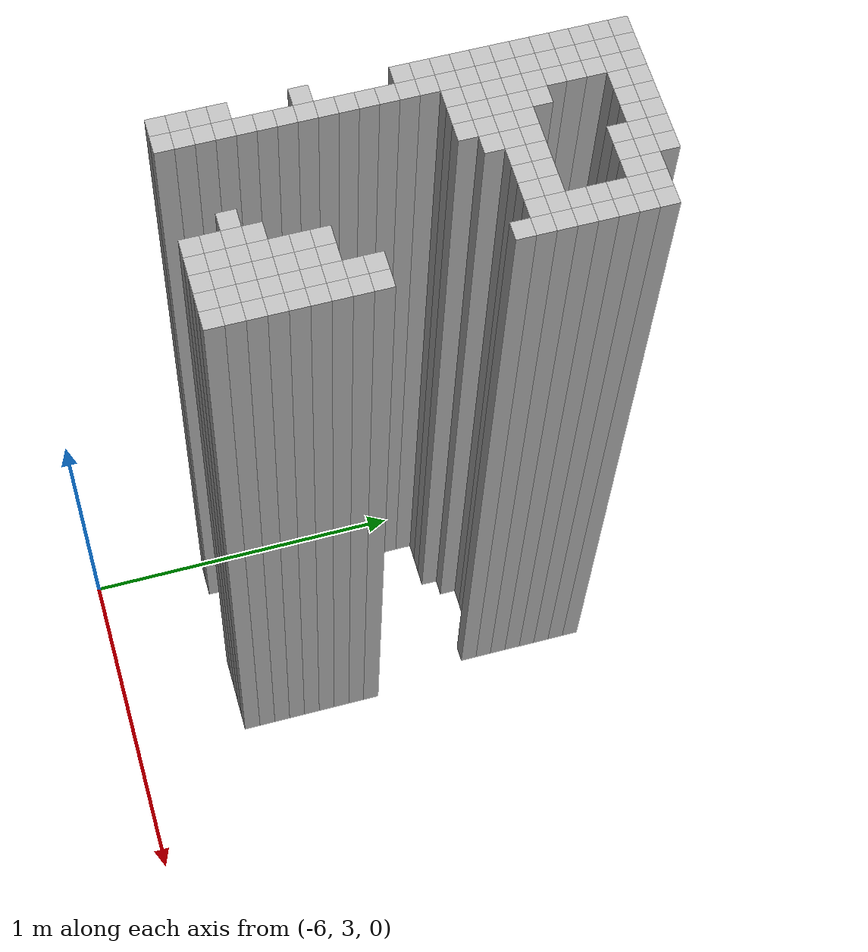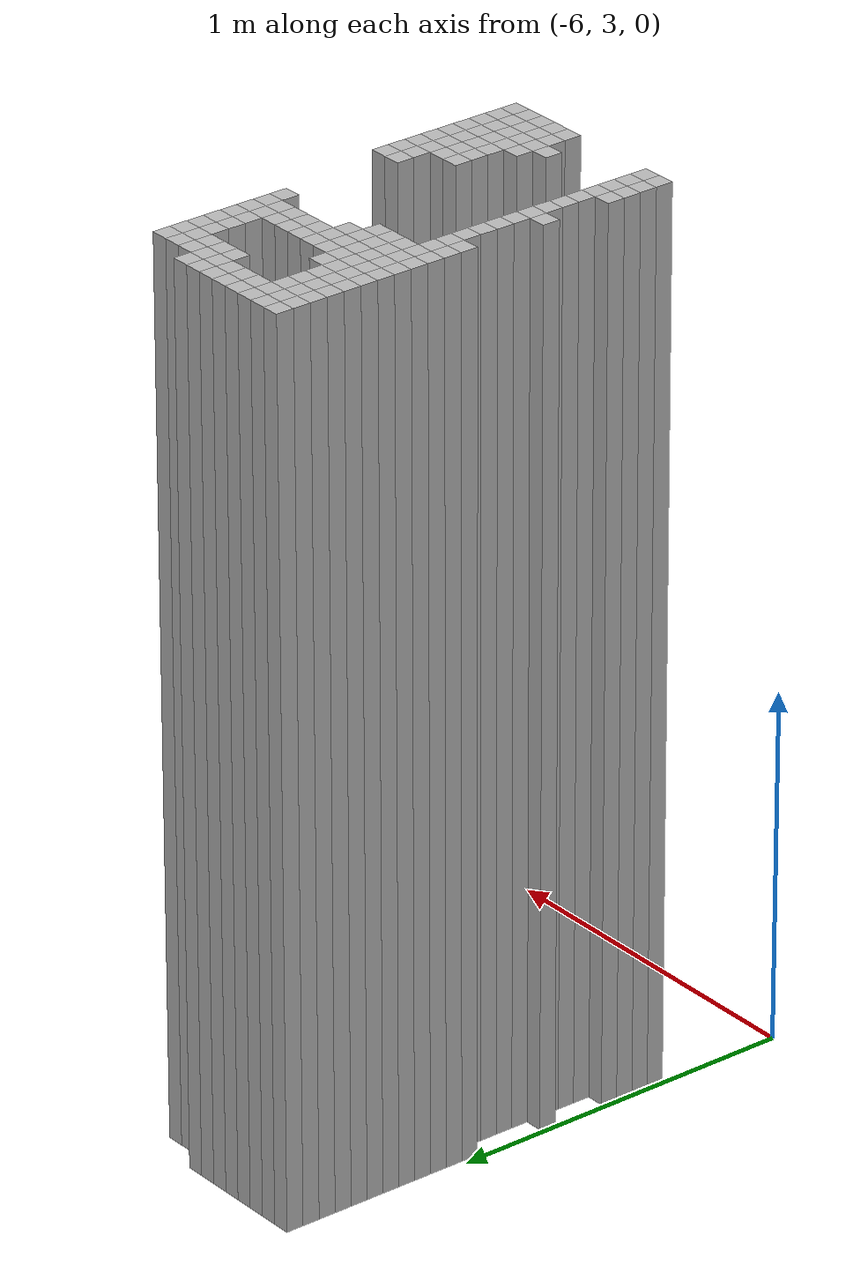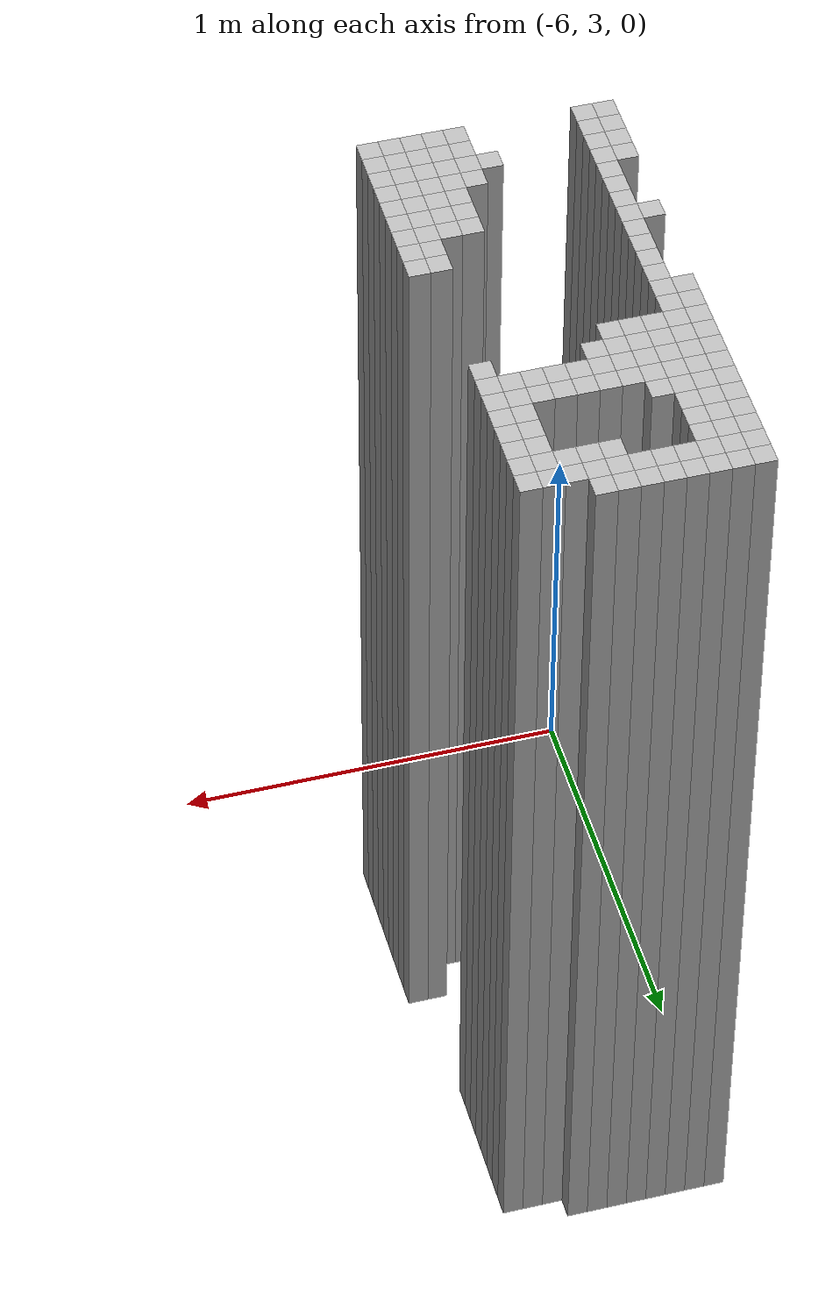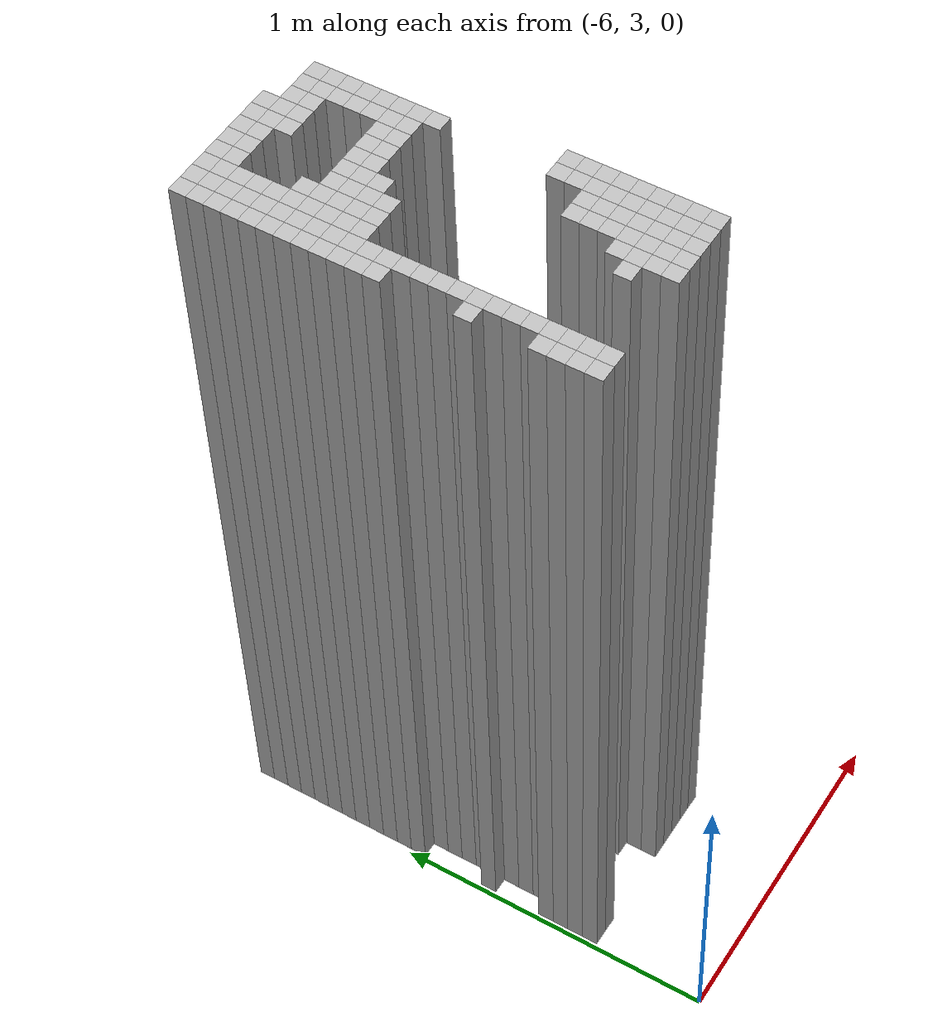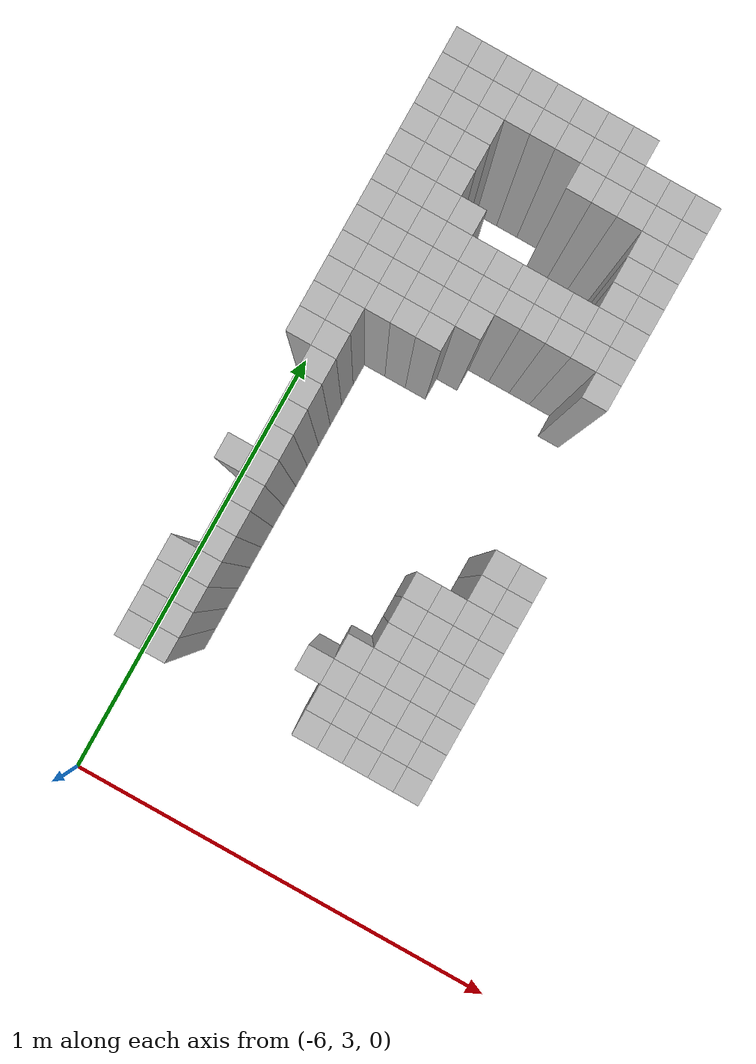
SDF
<sdf version="1.9">
 <world name="map_world">
  <model name="wall_104_63">
   <static>true</static>
   <pose>-5.961 4.530 1.250 0 0 0</pose>
   <link name="link">
    <collision name="collision"><geometry><box><size>0.050 0.050 2.500</size></box></geometry></collision>
    <visual name="visual"><geometry><box><size>0.050 0.050 2.500</size></box></geometry></visual>
   </link>
  </model>
  <model name="wall_105_63">
   <static>true</static>
   <pose>-5.911 4.530 1.250 0 0 0</pose>
   <link name="link">
    <collision name="collision"><geometry><box><size>0.050 0.050 2.500</size></box></geometry></collision>
    <visual name="visual"><geometry><box><size>0.050 0.050 2.500</size></box></geometry></visual>
   </link>
  </model>
  <model name="wall_106_63">
   <static>true</static>
   <pose>-5.861 4.530 1.250 0 0 0</pose>
   <link name="link">
    <collision name="collision"><geometry><box><size>0.050 0.050 2.500</size></box></geometry></collision>
    <visual name="visual"><geometry><box><size>0.050 0.050 2.500</size></box></geometry></visual>
   </link>
  </model>
  <model name="wall_107_63">
   <static>true</static>
   <pose>-5.811 4.530 1.250 0 0 0</pose>
   <link name="link">
    <collision name="collision"><geometry><box><size>0.050 0.050 2.500</size></box></geometry></collision>
    <visual name="visual"><geometry><box><size>0.050 0.050 2.500</size></box></geometry></visual>
   </link>
  </model>
  <model name="wall_108_63">
   <static>true</static>
   <pose>-5.761 4.530 1.250 0 0 0</pose>
   <link name="link">
    <collision name="collision"><geometry><box><size>0.050 0.050 2.500</size></box></geometry></collision>
    <visual name="visual"><geometry><box><size>0.050 0.050 2.500</size></box></geometry></visual>
   </link>
  </model>
  <model name="wall_109_63">
   <static>true</static>
   <pose>-5.711 4.530 1.250 0 0 0</pose>
   <link name="link">
    <collision name="collision"><geometry><box><size>0.050 0.050 2.500</size></box></geometry></collision>
    <visual name="visual"><geometry><box><size>0.050 0.050 2.500</size></box></geometry></visual>
   </link>
  </model>
  <model name="wall_110_63">
   <static>true</static>
   <pose>-5.661 4.530 1.250 0 0 0</pose>
   <link name="link">
    <collision name="collision"><geometry><box><size>0.050 0.050 2.500</size></box></geometry></collision>
    <visual name="visual"><geometry><box><size>0.050 0.050 2.500</size></box></geometry></visual>
   </link>
  </model>
  <model name="wall_111_63">
   <static>true</static>
   <pose>-5.611 4.530 1.250 0 0 0</pose>
   <link name="link">
    <collision name="collision"><geometry><box><size>0.050 0.050 2.500</size></box></geometry></collision>
    <visual name="visual"><geometry><box><size>0.050 0.050 2.500</size></box></geometry></visual>
   </link>
  </model>
  <model name="wall_104_64">
   <static>true</static>
   <pose>-5.961 4.480 1.250 0 0 0</pose>
   <link name="link">
    <collision name="collision"><geometry><box><size>0.050 0.050 2.500</size></box></geometry></collision>
    <visual name="visual"><geometry><box><size>0.050 0.050 2.500</size></box></geometry></visual>
   </link>
  </model>
  <model name="wall_105_64">
   <static>true</static>
   <pose>-5.911 4.480 1.250 0 0 0</pose>
   <link name="link">
    <collision name="collision"><geometry><box><size>0.050 0.050 2.500</size></box></geometry></collision>
    <visual name="visual"><geometry><box><size>0.050 0.050 2.500</size></box></geometry></visual>
   </link>
  </model>
  <model name="wall_106_64">
   <static>true</static>
   <pose>-5.861 4.480 1.250 0 0 0</pose>
   <link name="link">
    <collision name="collision"><geometry><box><size>0.050 0.050 2.500</size></box></geometry></collision>
    <visual name="visual"><geometry><box><size>0.050 0.050 2.500</size></box></geometry></visual>
   </link>
  </model>
  <model name="wall_107_64">
   <static>true</static>
   <pose>-5.811 4.480 1.250 0 0 0</pose>
   <link name="link">
    <collision name="collision"><geometry><box><size>0.050 0.050 2.500</size></box></geometry></collision>
    <visual name="visual"><geometry><box><size>0.050 0.050 2.500</size></box></geometry></visual>
   </link>
  </model>
  <model name="wall_108_64">
   <static>true</static>
   <pose>-5.761 4.480 1.250 0 0 0</pose>
   <link name="link">
    <collision name="collision"><geometry><box><size>0.050 0.050 2.500</size></box></geometry></collision>
    <visual name="visual"><geometry><box><size>0.050 0.050 2.500</size></box></geometry></visual>
   </link>
  </model>
  <model name="wall_109_64">
   <static>true</static>
   <pose>-5.711 4.480 1.250 0 0 0</pose>
   <link name="link">
    <collision name="collision"><geometry><box><size>0.050 0.050 2.500</size></box></geometry></collision>
    <visual name="visual"><geometry><box><size>0.050 0.050 2.500</size></box></geometry></visual>
   </link>
  </model>
  <model name="wall_110_64">
   <static>true</static>
   <pose>-5.661 4.480 1.250 0 0 0</pose>
   <link name="link">
    <collision name="collision"><geometry><box><size>0.050 0.050 2.500</size></box></geometry></collision>
    <visual name="visual"><geometry><box><size>0.050 0.050 2.500</size></box></geometry></visual>
   </link>
  </model>
  <model name="wall_111_64">
   <static>true</static>
   <pose>-5.611 4.480 1.250 0 0 0</pose>
   <link name="link">
    <collision name="collision"><geometry><box><size>0.050 0.050 2.500</size></box></geometry></collision>
    <visual name="visual"><geometry><box><size>0.050 0.050 2.500</size></box></geometry></visual>
   </link>
  </model>
  <model name="wall_112_64">
   <static>true</static>
   <pose>-5.561 4.480 1.250 0 0 0</pose>
   <link name="link">
    <collision name="collision"><geometry><box><size>0.050 0.050 2.500</size></box></geometry></collision>
    <visual name="visual"><geometry><box><size>0.050 0.050 2.500</size></box></geometry></visual>
   </link>
  </model>
  <model name="wall_113_64">
   <static>true</static>
   <pose>-5.511 4.480 1.250 0 0 0</pose>
   <link name="link">
    <collision name="collision"><geometry><box><size>0.050 0.050 2.500</size></box></geometry></collision>
    <visual name="visual"><geometry><box><size>0.050 0.050 2.500</size></box></geometry></visual>
   </link>
  </model>
  <model name="wall_114_64">
   <static>true</static>
   <pose>-5.461 4.480 1.250 0 0 0</pose>
   <link name="link">
    <collision name="collision"><geometry><box><size>0.050 0.050 2.500</size></box></geometry></collision>
    <visual name="visual"><geometry><box><size>0.050 0.050 2.500</size></box></geometry></visual>
   </link>
  </model>
  <model name="wall_104_65">
   <static>true</static>
   <pose>-5.961 4.430 1.250 0 0 0</pose>
   <link name="link">
    <collision name="collision"><geometry><box><size>0.050 0.050 2.500</size></box></geometry></collision>
    <visual name="visual"><geometry><box><size>0.050 0.050 2.500</size></box></geometry></visual>
   </link>
  </model>
  <model name="wall_105_65">
   <static>true</static>
   <pose>-5.911 4.430 1.250 0 0 0</pose>
   <link name="link">
    <collision name="collision"><geometry><box><size>0.050 0.050 2.500</size></box></geometry></collision>
    <visual name="visual"><geometry><box><size>0.050 0.050 2.500</size></box></geometry></visual>
   </link>
  </model>
  <model name="wall_106_65">
   <static>true</static>
   <pose>-5.861 4.430 1.250 0 0 0</pose>
   <link name="link">
    <collision name="collision"><geometry><box><size>0.050 0.050 2.500</size></box></geometry></collision>
    <visual name="visual"><geometry><box><size>0.050 0.050 2.500</size></box></geometry></visual>
   </link>
  </model>
  <model name="wall_110_65">
   <static>true</static>
   <pose>-5.661 4.430 1.250 0 0 0</pose>
   <link name="link">
    <collision name="collision"><geometry><box><size>0.050 0.050 2.500</size></box></geometry></collision>
    <visual name="visual"><geometry><box><size>0.050 0.050 2.500</size></box></geometry></visual>
   </link>
  </model>
  <model name="wall_111_65">
   <static>true</static>
   <pose>-5.611 4.430 1.250 0 0 0</pose>
   <link name="link">
    <collision name="collision"><geometry><box><size>0.050 0.050 2.500</size></box></geometry></collision>
    <visual name="visual"><geometry><box><size>0.050 0.050 2.500</size></box></geometry></visual>
   </link>
  </model>
  <model name="wall_112_65">
   <static>true</static>
   <pose>-5.561 4.430 1.250 0 0 0</pose>
   <link name="link">
    <collision name="collision"><geometry><box><size>0.050 0.050 2.500</size></box></geometry></collision>
    <visual name="visual"><geometry><box><size>0.050 0.050 2.500</size></box></geometry></visual>
   </link>
  </model>
  <model name="wall_113_65">
   <static>true</static>
   <pose>-5.511 4.430 1.250 0 0 0</pose>
   <link name="link">
    <collision name="collision"><geometry><box><size>0.050 0.050 2.500</size></box></geometry></collision>
    <visual name="visual"><geometry><box><size>0.050 0.050 2.500</size></box></geometry></visual>
   </link>
  </model>
  <model name="wall_114_65">
   <static>true</static>
   <pose>-5.461 4.430 1.250 0 0 0</pose>
   <link name="link">
    <collision name="collision"><geometry><box><size>0.050 0.050 2.500</size></box></geometry></collision>
    <visual name="visual"><geometry><box><size>0.050 0.050 2.500</size></box></geometry></visual>
   </link>
  </model>
  <model name="wall_104_66">
   <static>true</static>
   <pose>-5.961 4.380 1.250 0 0 0</pose>
   <link name="link">
    <collision name="collision"><geometry><box><size>0.050 0.050 2.500</size></box></geometry></collision>
    <visual name="visual"><geometry><box><size>0.050 0.050 2.500</size></box></geometry></visual>
   </link>
  </model>
  <model name="wall_105_66">
   <static>true</static>
   <pose>-5.911 4.380 1.250 0 0 0</pose>
   <link name="link">
    <collision name="collision"><geometry><box><size>0.050 0.050 2.500</size></box></geometry></collision>
    <visual name="visual"><geometry><box><size>0.050 0.050 2.500</size></box></geometry></visual>
   </link>
  </model>
  <model name="wall_106_66">
   <static>true</static>
   <pose>-5.861 4.380 1.250 0 0 0</pose>
   <link name="link">
    <collision name="collision"><geometry><box><size>0.050 0.050 2.500</size></box></geometry></collision>
    <visual name="visual"><geometry><box><size>0.050 0.050 2.500</size></box></geometry></visual>
   </link>
  </model>
  <model name="wall_113_66">
   <static>true</static>
   <pose>-5.511 4.380 1.250 0 0 0</pose>
   <link name="link">
    <collision name="collision"><geometry><box><size>0.050 0.050 2.500</size></box></geometry></collision>
    <visual name="visual"><geometry><box><size>0.050 0.050 2.500</size></box></geometry></visual>
   </link>
  </model>
  <model name="wall_114_66">
   <static>true</static>
   <pose>-5.461 4.380 1.250 0 0 0</pose>
   <link name="link">
    <collision name="collision"><geometry><box><size>0.050 0.050 2.500</size></box></geometry></collision>
    <visual name="visual"><geometry><box><size>0.050 0.050 2.500</size></box></geometry></visual>
   </link>
  </model>
  <model name="wall_104_67">
   <static>true</static>
   <pose>-5.961 4.330 1.250 0 0 0</pose>
   <link name="link">
    <collision name="collision"><geometry><box><size>0.050 0.050 2.500</size></box></geometry></collision>
    <visual name="visual"><geometry><box><size>0.050 0.050 2.500</size></box></geometry></visual>
   </link>
  </model>
  <model name="wall_105_67">
   <static>true</static>
   <pose>-5.911 4.330 1.250 0 0 0</pose>
   <link name="link">
    <collision name="collision"><geometry><box><size>0.050 0.050 2.500</size></box></geometry></collision>
    <visual name="visual"><geometry><box><size>0.050 0.050 2.500</size></box></geometry></visual>
   </link>
  </model>
  <model name="wall_106_67">
   <static>true</static>
   <pose>-5.861 4.330 1.250 0 0 0</pose>
   <link name="link">
    <collision name="collision"><geometry><box><size>0.050 0.050 2.500</size></box></geometry></collision>
    <visual name="visual"><geometry><box><size>0.050 0.050 2.500</size></box></geometry></visual>
   </link>
  </model>
  <model name="wall_113_67">
   <static>true</static>
   <pose>-5.511 4.330 1.250 0 0 0</pose>
   <link name="link">
    <collision name="collision"><geometry><box><size>0.050 0.050 2.500</size></box></geometry></collision>
    <visual name="visual"><geometry><box><size>0.050 0.050 2.500</size></box></geometry></visual>
   </link>
  </model>
  <model name="wall_114_67">
   <static>true</static>
   <pose>-5.461 4.330 1.250 0 0 0</pose>
   <link name="link">
    <collision name="collision"><geometry><box><size>0.050 0.050 2.500</size></box></geometry></collision>
    <visual name="visual"><geometry><box><size>0.050 0.050 2.500</size></box></geometry></visual>
   </link>
  </model>
  <model name="wall_104_68">
   <static>true</static>
   <pose>-5.961 4.280 1.250 0 0 0</pose>
   <link name="link">
    <collision name="collision"><geometry><box><size>0.050 0.050 2.500</size></box></geometry></collision>
    <visual name="visual"><geometry><box><size>0.050 0.050 2.500</size></box></geometry></visual>
   </link>
  </model>
  <model name="wall_105_68">
   <static>true</static>
   <pose>-5.911 4.280 1.250 0 0 0</pose>
   <link name="link">
    <collision name="collision"><geometry><box><size>0.050 0.050 2.500</size></box></geometry></collision>
    <visual name="visual"><geometry><box><size>0.050 0.050 2.500</size></box></geometry></visual>
   </link>
  </model>
  <model name="wall_106_68">
   <static>true</static>
   <pose>-5.861 4.280 1.250 0 0 0</pose>
   <link name="link">
    <collision name="collision"><geometry><box><size>0.050 0.050 2.500</size></box></geometry></collision>
    <visual name="visual"><geometry><box><size>0.050 0.050 2.500</size></box></geometry></visual>
   </link>
  </model>
  <model name="wall_107_68">
   <static>true</static>
   <pose>-5.811 4.280 1.250 0 0 0</pose>
   <link name="link">
    <collision name="collision"><geometry><box><size>0.050 0.050 2.500</size></box></geometry></collision>
    <visual name="visual"><geometry><box><size>0.050 0.050 2.500</size></box></geometry></visual>
   </link>
  </model>
  <model name="wall_113_68">
   <static>true</static>
   <pose>-5.511 4.280 1.250 0 0 0</pose>
   <link name="link">
    <collision name="collision"><geometry><box><size>0.050 0.050 2.500</size></box></geometry></collision>
    <visual name="visual"><geometry><box><size>0.050 0.050 2.500</size></box></geometry></visual>
   </link>
  </model>
  <model name="wall_114_68">
   <static>true</static>
   <pose>-5.461 4.280 1.250 0 0 0</pose>
   <link name="link">
    <collision name="collision"><geometry><box><size>0.050 0.050 2.500</size></box></geometry></collision>
    <visual name="visual"><geometry><box><size>0.050 0.050 2.500</size></box></geometry></visual>
   </link>
  </model>
  <model name="wall_104_69">
   <static>true</static>
   <pose>-5.961 4.230 1.250 0 0 0</pose>
   <link name="link">
    <collision name="collision"><geometry><box><size>0.050 0.050 2.500</size></box></geometry></collision>
    <visual name="visual"><geometry><box><size>0.050 0.050 2.500</size></box></geometry></visual>
   </link>
  </model>
  <model name="wall_105_69">
   <static>true</static>
   <pose>-5.911 4.230 1.250 0 0 0</pose>
   <link name="link">
    <collision name="collision"><geometry><box><size>0.050 0.050 2.500</size></box></geometry></collision>
    <visual name="visual"><geometry><box><size>0.050 0.050 2.500</size></box></geometry></visual>
   </link>
  </model>
  <model name="wall_106_69">
   <static>true</static>
   <pose>-5.861 4.230 1.250 0 0 0</pose>
   <link name="link">
    <collision name="collision"><geometry><box><size>0.050 0.050 2.500</size></box></geometry></collision>
    <visual name="visual"><geometry><box><size>0.050 0.050 2.500</size></box></geometry></visual>
   </link>
  </model>
  <model name="wall_107_69">
   <static>true</static>
   <pose>-5.811 4.230 1.250 0 0 0</pose>
   <link name="link">
    <collision name="collision"><geometry><box><size>0.050 0.050 2.500</size></box></geometry></collision>
    <visual name="visual"><geometry><box><size>0.050 0.050 2.500</size></box></geometry></visual>
   </link>
  </model>
  <model name="wall_108_69">
   <static>true</static>
   <pose>-5.761 4.230 1.250 0 0 0</pose>
   <link name="link">
    <collision name="collision"><geometry><box><size>0.050 0.050 2.500</size></box></geometry></collision>
    <visual name="visual"><geometry><box><size>0.050 0.050 2.500</size></box></geometry></visual>
   </link>
  </model>
  <model name="wall_109_69">
   <static>true</static>
   <pose>-5.711 4.230 1.250 0 0 0</pose>
   <link name="link">
    <collision name="collision"><geometry><box><size>0.050 0.050 2.500</size></box></geometry></collision>
    <visual name="visual"><geometry><box><size>0.050 0.050 2.500</size></box></geometry></visual>
   </link>
  </model>
  <model name="wall_110_69">
   <static>true</static>
   <pose>-5.661 4.230 1.250 0 0 0</pose>
   <link name="link">
    <collision name="collision"><geometry><box><size>0.050 0.050 2.500</size></box></geometry></collision>
    <visual name="visual"><geometry><box><size>0.050 0.050 2.500</size></box></geometry></visual>
   </link>
  </model>
  <model name="wall_111_69">
   <static>true</static>
   <pose>-5.611 4.230 1.250 0 0 0</pose>
   <link name="link">
    <collision name="collision"><geometry><box><size>0.050 0.050 2.500</size></box></geometry></collision>
    <visual name="visual"><geometry><box><size>0.050 0.050 2.500</size></box></geometry></visual>
   </link>
  </model>
  <model name="wall_112_69">
   <static>true</static>
   <pose>-5.561 4.230 1.250 0 0 0</pose>
   <link name="link">
    <collision name="collision"><geometry><box><size>0.050 0.050 2.500</size></box></geometry></collision>
    <visual name="visual"><geometry><box><size>0.050 0.050 2.500</size></box></geometry></visual>
   </link>
  </model>
  <model name="wall_113_69">
   <static>true</static>
   <pose>-5.511 4.230 1.250 0 0 0</pose>
   <link name="link">
    <collision name="collision"><geometry><box><size>0.050 0.050 2.500</size></box></geometry></collision>
    <visual name="visual"><geometry><box><size>0.050 0.050 2.500</size></box></geometry></visual>
   </link>
  </model>
  <model name="wall_114_69">
   <static>true</static>
   <pose>-5.461 4.230 1.250 0 0 0</pose>
   <link name="link">
    <collision name="collision"><geometry><box><size>0.050 0.050 2.500</size></box></geometry></collision>
    <visual name="visual"><geometry><box><size>0.050 0.050 2.500</size></box></geometry></visual>
   </link>
  </model>
  <model name="wall_104_70">
   <static>true</static>
   <pose>-5.961 4.180 1.250 0 0 0</pose>
   <link name="link">
    <collision name="collision"><geometry><box><size>0.050 0.050 2.500</size></box></geometry></collision>
    <visual name="visual"><geometry><box><size>0.050 0.050 2.500</size></box></geometry></visual>
   </link>
  </model>
  <model name="wall_105_70">
   <static>true</static>
   <pose>-5.911 4.180 1.250 0 0 0</pose>
   <link name="link">
    <collision name="collision"><geometry><box><size>0.050 0.050 2.500</size></box></geometry></collision>
    <visual name="visual"><geometry><box><size>0.050 0.050 2.500</size></box></geometry></visual>
   </link>
  </model>
  <model name="wall_106_70">
   <static>true</static>
   <pose>-5.861 4.180 1.250 0 0 0</pose>
   <link name="link">
    <collision name="collision"><geometry><box><size>0.050 0.050 2.500</size></box></geometry></collision>
    <visual name="visual"><geometry><box><size>0.050 0.050 2.500</size></box></geometry></visual>
   </link>
  </model>
  <model name="wall_107_70">
   <static>true</static>
   <pose>-5.811 4.180 1.250 0 0 0</pose>
   <link name="link">
    <collision name="collision"><geometry><box><size>0.050 0.050 2.500</size></box></geometry></collision>
    <visual name="visual"><geometry><box><size>0.050 0.050 2.500</size></box></geometry></visual>
   </link>
  </model>
  <model name="wall_108_70">
   <static>true</static>
   <pose>-5.761 4.180 1.250 0 0 0</pose>
   <link name="link">
    <collision name="collision"><geometry><box><size>0.050 0.050 2.500</size></box></geometry></collision>
    <visual name="visual"><geometry><box><size>0.050 0.050 2.500</size></box></geometry></visual>
   </link>
  </model>
  <model name="wall_109_70">
   <static>true</static>
   <pose>-5.711 4.180 1.250 0 0 0</pose>
   <link name="link">
    <collision name="collision"><geometry><box><size>0.050 0.050 2.500</size></box></geometry></collision>
    <visual name="visual"><geometry><box><size>0.050 0.050 2.500</size></box></geometry></visual>
   </link>
  </model>
  <model name="wall_110_70">
   <static>true</static>
   <pose>-5.661 4.180 1.250 0 0 0</pose>
   <link name="link">
    <collision name="collision"><geometry><box><size>0.050 0.050 2.500</size></box></geometry></collision>
    <visual name="visual"><geometry><box><size>0.050 0.050 2.500</size></box></geometry></visual>
   </link>
  </model>
  <model name="wall_111_70">
   <static>true</static>
   <pose>-5.611 4.180 1.250 0 0 0</pose>
   <link name="link">
    <collision name="collision"><geometry><box><size>0.050 0.050 2.500</size></box></geometry></collision>
    <visual name="visual"><geometry><box><size>0.050 0.050 2.500</size></box></geometry></visual>
   </link>
  </model>
  <model name="wall_112_70">
   <static>true</static>
   <pose>-5.561 4.180 1.250 0 0 0</pose>
   <link name="link">
    <collision name="collision"><geometry><box><size>0.050 0.050 2.500</size></box></geometry></collision>
    <visual name="visual"><geometry><box><size>0.050 0.050 2.500</size></box></geometry></visual>
   </link>
  </model>
  <model name="wall_113_70">
   <static>true</static>
   <pose>-5.511 4.180 1.250 0 0 0</pose>
   <link name="link">
    <collision name="collision"><geometry><box><size>0.050 0.050 2.500</size></box></geometry></collision>
    <visual name="visual"><geometry><box><size>0.050 0.050 2.500</size></box></geometry></visual>
   </link>
  </model>
  <model name="wall_114_70">
   <static>true</static>
   <pose>-5.461 4.180 1.250 0 0 0</pose>
   <link name="link">
    <collision name="collision"><geometry><box><size>0.050 0.050 2.500</size></box></geometry></collision>
    <visual name="visual"><geometry><box><size>0.050 0.050 2.500</size></box></geometry></visual>
   </link>
  </model>
  <model name="wall_104_71">
   <static>true</static>
   <pose>-5.961 4.130 1.250 0 0 0</pose>
   <link name="link">
    <collision name="collision"><geometry><box><size>0.050 0.050 2.500</size></box></geometry></collision>
    <visual name="visual"><geometry><box><size>0.050 0.050 2.500</size></box></geometry></visual>
   </link>
  </model>
  <model name="wall_105_71">
   <static>true</static>
   <pose>-5.911 4.130 1.250 0 0 0</pose>
   <link name="link">
    <collision name="collision"><geometry><box><size>0.050 0.050 2.500</size></box></geometry></collision>
    <visual name="visual"><geometry><box><size>0.050 0.050 2.500</size></box></geometry></visual>
   </link>
  </model>
  <model name="wall_106_71">
   <static>true</static>
   <pose>-5.861 4.130 1.250 0 0 0</pose>
   <link name="link">
    <collision name="collision"><geometry><box><size>0.050 0.050 2.500</size></box></geometry></collision>
    <visual name="visual"><geometry><box><size>0.050 0.050 2.500</size></box></geometry></visual>
   </link>
  </model>
  <model name="wall_107_71">
   <static>true</static>
   <pose>-5.811 4.130 1.250 0 0 0</pose>
   <link name="link">
    <collision name="collision"><geometry><box><size>0.050 0.050 2.500</size></box></geometry></collision>
    <visual name="visual"><geometry><box><size>0.050 0.050 2.500</size></box></geometry></visual>
   </link>
  </model>
  <model name="wall_108_71">
   <static>true</static>
   <pose>-5.761 4.130 1.250 0 0 0</pose>
   <link name="link">
    <collision name="collision"><geometry><box><size>0.050 0.050 2.500</size></box></geometry></collision>
    <visual name="visual"><geometry><box><size>0.050 0.050 2.500</size></box></geometry></visual>
   </link>
  </model>
  <model name="wall_109_71">
   <static>true</static>
   <pose>-5.711 4.130 1.250 0 0 0</pose>
   <link name="link">
    <collision name="collision"><geometry><box><size>0.050 0.050 2.500</size></box></geometry></collision>
    <visual name="visual"><geometry><box><size>0.050 0.050 2.500</size></box></geometry></visual>
   </link>
  </model>
  <model name="wall_114_71">
   <static>true</static>
   <pose>-5.461 4.130 1.250 0 0 0</pose>
   <link name="link">
    <collision name="collision"><geometry><box><size>0.050 0.050 2.500</size></box></geometry></collision>
    <visual name="visual"><geometry><box><size>0.050 0.050 2.500</size></box></geometry></visual>
   </link>
  </model>
  <model name="wall_104_72">
   <static>true</static>
   <pose>-5.961 4.080 1.250 0 0 0</pose>
   <link name="link">
    <collision name="collision"><geometry><box><size>0.050 0.050 2.500</size></box></geometry></collision>
    <visual name="visual"><geometry><box><size>0.050 0.050 2.500</size></box></geometry></visual>
   </link>
  </model>
  <model name="wall_105_72">
   <static>true</static>
   <pose>-5.911 4.080 1.250 0 0 0</pose>
   <link name="link">
    <collision name="collision"><geometry><box><size>0.050 0.050 2.500</size></box></geometry></collision>
    <visual name="visual"><geometry><box><size>0.050 0.050 2.500</size></box></geometry></visual>
   </link>
  </model>
  <model name="wall_106_72">
   <static>true</static>
   <pose>-5.861 4.080 1.250 0 0 0</pose>
   <link name="link">
    <collision name="collision"><geometry><box><size>0.050 0.050 2.500</size></box></geometry></collision>
    <visual name="visual"><geometry><box><size>0.050 0.050 2.500</size></box></geometry></visual>
   </link>
  </model>
  <model name="wall_107_72">
   <static>true</static>
   <pose>-5.811 4.080 1.250 0 0 0</pose>
   <link name="link">
    <collision name="collision"><geometry><box><size>0.050 0.050 2.500</size></box></geometry></collision>
    <visual name="visual"><geometry><box><size>0.050 0.050 2.500</size></box></geometry></visual>
   </link>
  </model>
  <model name="wall_108_72">
   <static>true</static>
   <pose>-5.761 4.080 1.250 0 0 0</pose>
   <link name="link">
    <collision name="collision"><geometry><box><size>0.050 0.050 2.500</size></box></geometry></collision>
    <visual name="visual"><geometry><box><size>0.050 0.050 2.500</size></box></geometry></visual>
   </link>
  </model>
  <model name="wall_104_73">
   <static>true</static>
   <pose>-5.961 4.030 1.250 0 0 0</pose>
   <link name="link">
    <collision name="collision"><geometry><box><size>0.050 0.050 2.500</size></box></geometry></collision>
    <visual name="visual"><geometry><box><size>0.050 0.050 2.500</size></box></geometry></visual>
   </link>
  </model>
  <model name="wall_105_73">
   <static>true</static>
   <pose>-5.911 4.030 1.250 0 0 0</pose>
   <link name="link">
    <collision name="collision"><geometry><box><size>0.050 0.050 2.500</size></box></geometry></collision>
    <visual name="visual"><geometry><box><size>0.050 0.050 2.500</size></box></geometry></visual>
   </link>
  </model>
  <model name="wall_104_74">
   <static>true</static>
   <pose>-5.961 3.980 1.250 0 0 0</pose>
   <link name="link">
    <collision name="collision"><geometry><box><size>0.050 0.050 2.500</size></box></geometry></collision>
    <visual name="visual"><geometry><box><size>0.050 0.050 2.500</size></box></geometry></visual>
   </link>
  </model>
  <model name="wall_105_74">
   <static>true</static>
   <pose>-5.911 3.980 1.250 0 0 0</pose>
   <link name="link">
    <collision name="collision"><geometry><box><size>0.050 0.050 2.500</size></box></geometry></collision>
    <visual name="visual"><geometry><box><size>0.050 0.050 2.500</size></box></geometry></visual>
   </link>
  </model>
  <model name="wall_105_75">
   <static>true</static>
   <pose>-5.911 3.930 1.250 0 0 0</pose>
   <link name="link">
    <collision name="collision"><geometry><box><size>0.050 0.050 2.500</size></box></geometry></collision>
    <visual name="visual"><geometry><box><size>0.050 0.050 2.500</size></box></geometry></visual>
   </link>
  </model>
  <model name="wall_105_76">
   <static>true</static>
   <pose>-5.911 3.880 1.250 0 0 0</pose>
   <link name="link">
    <collision name="collision"><geometry><box><size>0.050 0.050 2.500</size></box></geometry></collision>
    <visual name="visual"><geometry><box><size>0.050 0.050 2.500</size></box></geometry></visual>
   </link>
  </model>
  <model name="wall_105_77">
   <static>true</static>
   <pose>-5.911 3.830 1.250 0 0 0</pose>
   <link name="link">
    <collision name="collision"><geometry><box><size>0.050 0.050 2.500</size></box></geometry></collision>
    <visual name="visual"><geometry><box><size>0.050 0.050 2.500</size></box></geometry></visual>
   </link>
  </model>
  <model name="wall_105_78">
   <static>true</static>
   <pose>-5.911 3.780 1.250 0 0 0</pose>
   <link name="link">
    <collision name="collision"><geometry><box><size>0.050 0.050 2.500</size></box></geometry></collision>
    <visual name="visual"><geometry><box><size>0.050 0.050 2.500</size></box></geometry></visual>
   </link>
  </model>
  <model name="wall_114_78">
   <static>true</static>
   <pose>-5.461 3.780 1.250 0 0 0</pose>
   <link name="link">
    <collision name="collision"><geometry><box><size>0.050 0.050 2.500</size></box></geometry></collision>
    <visual name="visual"><geometry><box><size>0.050 0.050 2.500</size></box></geometry></visual>
   </link>
  </model>
  <model name="wall_115_78">
   <static>true</static>
   <pose>-5.411 3.780 1.250 0 0 0</pose>
   <link name="link">
    <collision name="collision"><geometry><box><size>0.050 0.050 2.500</size></box></geometry></collision>
    <visual name="visual"><geometry><box><size>0.050 0.050 2.500</size></box></geometry></visual>
   </link>
  </model>
  <model name="wall_104_79">
   <static>true</static>
   <pose>-5.961 3.730 1.250 0 0 0</pose>
   <link name="link">
    <collision name="collision"><geometry><box><size>0.050 0.050 2.500</size></box></geometry></collision>
    <visual name="visual"><geometry><box><size>0.050 0.050 2.500</size></box></geometry></visual>
   </link>
  </model>
  <model name="wall_105_79">
   <static>true</static>
   <pose>-5.911 3.730 1.250 0 0 0</pose>
   <link name="link">
    <collision name="collision"><geometry><box><size>0.050 0.050 2.500</size></box></geometry></collision>
    <visual name="visual"><geometry><box><size>0.050 0.050 2.500</size></box></geometry></visual>
   </link>
  </model>
  <model name="wall_114_79">
   <static>true</static>
   <pose>-5.461 3.730 1.250 0 0 0</pose>
   <link name="link">
    <collision name="collision"><geometry><box><size>0.050 0.050 2.500</size></box></geometry></collision>
    <visual name="visual"><geometry><box><size>0.050 0.050 2.500</size></box></geometry></visual>
   </link>
  </model>
  <model name="wall_115_79">
   <static>true</static>
   <pose>-5.411 3.730 1.250 0 0 0</pose>
   <link name="link">
    <collision name="collision"><geometry><box><size>0.050 0.050 2.500</size></box></geometry></collision>
    <visual name="visual"><geometry><box><size>0.050 0.050 2.500</size></box></geometry></visual>
   </link>
  </model>
  <model name="wall_105_80">
   <static>true</static>
   <pose>-5.911 3.680 1.250 0 0 0</pose>
   <link name="link">
    <collision name="collision"><geometry><box><size>0.050 0.050 2.500</size></box></geometry></collision>
    <visual name="visual"><geometry><box><size>0.050 0.050 2.500</size></box></geometry></visual>
   </link>
  </model>
  <model name="wall_112_80">
   <static>true</static>
   <pose>-5.561 3.680 1.250 0 0 0</pose>
   <link name="link">
    <collision name="collision"><geometry><box><size>0.050 0.050 2.500</size></box></geometry></collision>
    <visual name="visual"><geometry><box><size>0.050 0.050 2.500</size></box></geometry></visual>
   </link>
  </model>
  <model name="wall_113_80">
   <static>true</static>
   <pose>-5.511 3.680 1.250 0 0 0</pose>
   <link name="link">
    <collision name="collision"><geometry><box><size>0.050 0.050 2.500</size></box></geometry></collision>
    <visual name="visual"><geometry><box><size>0.050 0.050 2.500</size></box></geometry></visual>
   </link>
  </model>
  <model name="wall_114_80">
   <static>true</static>
   <pose>-5.461 3.680 1.250 0 0 0</pose>
   <link name="link">
    <collision name="collision"><geometry><box><size>0.050 0.050 2.500</size></box></geometry></collision>
    <visual name="visual"><geometry><box><size>0.050 0.050 2.500</size></box></geometry></visual>
   </link>
  </model>
  <model name="wall_115_80">
   <static>true</static>
   <pose>-5.411 3.680 1.250 0 0 0</pose>
   <link name="link">
    <collision name="collision"><geometry><box><size>0.050 0.050 2.500</size></box></geometry></collision>
    <visual name="visual"><geometry><box><size>0.050 0.050 2.500</size></box></geometry></visual>
   </link>
  </model>
  <model name="wall_105_81">
   <static>true</static>
   <pose>-5.911 3.630 1.250 0 0 0</pose>
   <link name="link">
    <collision name="collision"><geometry><box><size>0.050 0.050 2.500</size></box></geometry></collision>
    <visual name="visual"><geometry><box><size>0.050 0.050 2.500</size></box></geometry></visual>
   </link>
  </model>
  <model name="wall_112_81">
   <static>true</static>
   <pose>-5.561 3.630 1.250 0 0 0</pose>
   <link name="link">
    <collision name="collision"><geometry><box><size>0.050 0.050 2.500</size></box></geometry></collision>
    <visual name="visual"><geometry><box><size>0.050 0.050 2.500</size></box></geometry></visual>
   </link>
  </model>
  <model name="wall_113_81">
   <static>true</static>
   <pose>-5.511 3.630 1.250 0 0 0</pose>
   <link name="link">
    <collision name="collision"><geometry><box><size>0.050 0.050 2.500</size></box></geometry></collision>
    <visual name="visual"><geometry><box><size>0.050 0.050 2.500</size></box></geometry></visual>
   </link>
  </model>
  <model name="wall_114_81">
   <static>true</static>
   <pose>-5.461 3.630 1.250 0 0 0</pose>
   <link name="link">
    <collision name="collision"><geometry><box><size>0.050 0.050 2.500</size></box></geometry></collision>
    <visual name="visual"><geometry><box><size>0.050 0.050 2.500</size></box></geometry></visual>
   </link>
  </model>
  <model name="wall_115_81">
   <static>true</static>
   <pose>-5.411 3.630 1.250 0 0 0</pose>
   <link name="link">
    <collision name="collision"><geometry><box><size>0.050 0.050 2.500</size></box></geometry></collision>
    <visual name="visual"><geometry><box><size>0.050 0.050 2.500</size></box></geometry></visual>
   </link>
  </model>
  <model name="wall_105_82">
   <static>true</static>
   <pose>-5.911 3.580 1.250 0 0 0</pose>
   <link name="link">
    <collision name="collision"><geometry><box><size>0.050 0.050 2.500</size></box></geometry></collision>
    <visual name="visual"><geometry><box><size>0.050 0.050 2.500</size></box></geometry></visual>
   </link>
  </model>
  <model name="wall_112_82">
   <static>true</static>
   <pose>-5.561 3.580 1.250 0 0 0</pose>
   <link name="link">
    <collision name="collision"><geometry><box><size>0.050 0.050 2.500</size></box></geometry></collision>
    <visual name="visual"><geometry><box><size>0.050 0.050 2.500</size></box></geometry></visual>
   </link>
  </model>
  <model name="wall_113_82">
   <static>true</static>
   <pose>-5.511 3.580 1.250 0 0 0</pose>
   <link name="link">
    <collision name="collision"><geometry><box><size>0.050 0.050 2.500</size></box></geometry></collision>
    <visual name="visual"><geometry><box><size>0.050 0.050 2.500</size></box></geometry></visual>
   </link>
  </model>
  <model name="wall_114_82">
   <static>true</static>
   <pose>-5.461 3.580 1.250 0 0 0</pose>
   <link name="link">
    <collision name="collision"><geometry><box><size>0.050 0.050 2.500</size></box></geometry></collision>
    <visual name="visual"><geometry><box><size>0.050 0.050 2.500</size></box></geometry></visual>
   </link>
  </model>
  <model name="wall_115_82">
   <static>true</static>
   <pose>-5.411 3.580 1.250 0 0 0</pose>
   <link name="link">
    <collision name="collision"><geometry><box><size>0.050 0.050 2.500</size></box></geometry></collision>
    <visual name="visual"><geometry><box><size>0.050 0.050 2.500</size></box></geometry></visual>
   </link>
  </model>
  <model name="wall_104_83">
   <static>true</static>
   <pose>-5.961 3.530 1.250 0 0 0</pose>
   <link name="link">
    <collision name="collision"><geometry><box><size>0.050 0.050 2.500</size></box></geometry></collision>
    <visual name="visual"><geometry><box><size>0.050 0.050 2.500</size></box></geometry></visual>
   </link>
  </model>
  <model name="wall_105_83">
   <static>true</static>
   <pose>-5.911 3.530 1.250 0 0 0</pose>
   <link name="link">
    <collision name="collision"><geometry><box><size>0.050 0.050 2.500</size></box></geometry></collision>
    <visual name="visual"><geometry><box><size>0.050 0.050 2.500</size></box></geometry></visual>
   </link>
  </model>
  <model name="wall_111_83">
   <static>true</static>
   <pose>-5.611 3.530 1.250 0 0 0</pose>
   <link name="link">
    <collision name="collision"><geometry><box><size>0.050 0.050 2.500</size></box></geometry></collision>
    <visual name="visual"><geometry><box><size>0.050 0.050 2.500</size></box></geometry></visual>
   </link>
  </model>
  <model name="wall_112_83">
   <static>true</static>
   <pose>-5.561 3.530 1.250 0 0 0</pose>
   <link name="link">
    <collision name="collision"><geometry><box><size>0.050 0.050 2.500</size></box></geometry></collision>
    <visual name="visual"><geometry><box><size>0.050 0.050 2.500</size></box></geometry></visual>
   </link>
  </model>
  <model name="wall_113_83">
   <static>true</static>
   <pose>-5.511 3.530 1.250 0 0 0</pose>
   <link name="link">
    <collision name="collision"><geometry><box><size>0.050 0.050 2.500</size></box></geometry></collision>
    <visual name="visual"><geometry><box><size>0.050 0.050 2.500</size></box></geometry></visual>
   </link>
  </model>
  <model name="wall_114_83">
   <static>true</static>
   <pose>-5.461 3.530 1.250 0 0 0</pose>
   <link name="link">
    <collision name="collision"><geometry><box><size>0.050 0.050 2.500</size></box></geometry></collision>
    <visual name="visual"><geometry><box><size>0.050 0.050 2.500</size></box></geometry></visual>
   </link>
  </model>
  <model name="wall_115_83">
   <static>true</static>
   <pose>-5.411 3.530 1.250 0 0 0</pose>
   <link name="link">
    <collision name="collision"><geometry><box><size>0.050 0.050 2.500</size></box></geometry></collision>
    <visual name="visual"><geometry><box><size>0.050 0.050 2.500</size></box></geometry></visual>
   </link>
  </model>
  <model name="wall_104_84">
   <static>true</static>
   <pose>-5.961 3.480 1.250 0 0 0</pose>
   <link name="link">
    <collision name="collision"><geometry><box><size>0.050 0.050 2.500</size></box></geometry></collision>
    <visual name="visual"><geometry><box><size>0.050 0.050 2.500</size></box></geometry></visual>
   </link>
  </model>
  <model name="wall_105_84">
   <static>true</static>
   <pose>-5.911 3.480 1.250 0 0 0</pose>
   <link name="link">
    <collision name="collision"><geometry><box><size>0.050 0.050 2.500</size></box></geometry></collision>
    <visual name="visual"><geometry><box><size>0.050 0.050 2.500</size></box></geometry></visual>
   </link>
  </model>
  <model name="wall_110_84">
   <static>true</static>
   <pose>-5.661 3.480 1.250 0 0 0</pose>
   <link name="link">
    <collision name="collision"><geometry><box><size>0.050 0.050 2.500</size></box></geometry></collision>
    <visual name="visual"><geometry><box><size>0.050 0.050 2.500</size></box></geometry></visual>
   </link>
  </model>
  <model name="wall_111_84">
   <static>true</static>
   <pose>-5.611 3.480 1.250 0 0 0</pose>
   <link name="link">
    <collision name="collision"><geometry><box><size>0.050 0.050 2.500</size></box></geometry></collision>
    <visual name="visual"><geometry><box><size>0.050 0.050 2.500</size></box></geometry></visual>
   </link>
  </model>
  <model name="wall_112_84">
   <static>true</static>
   <pose>-5.561 3.480 1.250 0 0 0</pose>
   <link name="link">
    <collision name="collision"><geometry><box><size>0.050 0.050 2.500</size></box></geometry></collision>
    <visual name="visual"><geometry><box><size>0.050 0.050 2.500</size></box></geometry></visual>
   </link>
  </model>
  <model name="wall_113_84">
   <static>true</static>
   <pose>-5.511 3.480 1.250 0 0 0</pose>
   <link name="link">
    <collision name="collision"><geometry><box><size>0.050 0.050 2.500</size></box></geometry></collision>
    <visual name="visual"><geometry><box><size>0.050 0.050 2.500</size></box></geometry></visual>
   </link>
  </model>
  <model name="wall_114_84">
   <static>true</static>
   <pose>-5.461 3.480 1.250 0 0 0</pose>
   <link name="link">
    <collision name="collision"><geometry><box><size>0.050 0.050 2.500</size></box></geometry></collision>
    <visual name="visual"><geometry><box><size>0.050 0.050 2.500</size></box></geometry></visual>
   </link>
  </model>
  <model name="wall_115_84">
   <static>true</static>
   <pose>-5.411 3.480 1.250 0 0 0</pose>
   <link name="link">
    <collision name="collision"><geometry><box><size>0.050 0.050 2.500</size></box></geometry></collision>
    <visual name="visual"><geometry><box><size>0.050 0.050 2.500</size></box></geometry></visual>
   </link>
  </model>
  <model name="wall_104_85">
   <static>true</static>
   <pose>-5.961 3.430 1.250 0 0 0</pose>
   <link name="link">
    <collision name="collision"><geometry><box><size>0.050 0.050 2.500</size></box></geometry></collision>
    <visual name="visual"><geometry><box><size>0.050 0.050 2.500</size></box></geometry></visual>
   </link>
  </model>
  <model name="wall_105_85">
   <static>true</static>
   <pose>-5.911 3.430 1.250 0 0 0</pose>
   <link name="link">
    <collision name="collision"><geometry><box><size>0.050 0.050 2.500</size></box></geometry></collision>
    <visual name="visual"><geometry><box><size>0.050 0.050 2.500</size></box></geometry></visual>
   </link>
  </model>
  <model name="wall_111_85">
   <static>true</static>
   <pose>-5.611 3.430 1.250 0 0 0</pose>
   <link name="link">
    <collision name="collision"><geometry><box><size>0.050 0.050 2.500</size></box></geometry></collision>
    <visual name="visual"><geometry><box><size>0.050 0.050 2.500</size></box></geometry></visual>
   </link>
  </model>
  <model name="wall_112_85">
   <static>true</static>
   <pose>-5.561 3.430 1.250 0 0 0</pose>
   <link name="link">
    <collision name="collision"><geometry><box><size>0.050 0.050 2.500</size></box></geometry></collision>
    <visual name="visual"><geometry><box><size>0.050 0.050 2.500</size></box></geometry></visual>
   </link>
  </model>
  <model name="wall_113_85">
   <static>true</static>
   <pose>-5.511 3.430 1.250 0 0 0</pose>
   <link name="link">
    <collision name="collision"><geometry><box><size>0.050 0.050 2.500</size></box></geometry></collision>
    <visual name="visual"><geometry><box><size>0.050 0.050 2.500</size></box></geometry></visual>
   </link>
  </model>
  <model name="wall_114_85">
   <static>true</static>
   <pose>-5.461 3.430 1.250 0 0 0</pose>
   <link name="link">
    <collision name="collision"><geometry><box><size>0.050 0.050 2.500</size></box></geometry></collision>
    <visual name="visual"><geometry><box><size>0.050 0.050 2.500</size></box></geometry></visual>
   </link>
  </model>
  <model name="wall_115_85">
   <static>true</static>
   <pose>-5.411 3.430 1.250 0 0 0</pose>
   <link name="link">
    <collision name="collision"><geometry><box><size>0.050 0.050 2.500</size></box></geometry></collision>
    <visual name="visual"><geometry><box><size>0.050 0.050 2.500</size></box></geometry></visual>
   </link>
  </model>
  <model name="wall_104_86">
   <static>true</static>
   <pose>-5.961 3.380 1.250 0 0 0</pose>
   <link name="link">
    <collision name="collision"><geometry><box><size>0.050 0.050 2.500</size></box></geometry></collision>
    <visual name="visual"><geometry><box><size>0.050 0.050 2.500</size></box></geometry></visual>
   </link>
  </model>
  <model name="wall_105_86">
   <static>true</static>
   <pose>-5.911 3.380 1.250 0 0 0</pose>
   <link name="link">
    <collision name="collision"><geometry><box><size>0.050 0.050 2.500</size></box></geometry></collision>
    <visual name="visual"><geometry><box><size>0.050 0.050 2.500</size></box></geometry></visual>
   </link>
  </model>
  <model name="wall_111_86">
   <static>true</static>
   <pose>-5.611 3.380 1.250 0 0 0</pose>
   <link name="link">
    <collision name="collision"><geometry><box><size>0.050 0.050 2.500</size></box></geometry></collision>
    <visual name="visual"><geometry><box><size>0.050 0.050 2.500</size></box></geometry></visual>
   </link>
  </model>
  <model name="wall_112_86">
   <static>true</static>
   <pose>-5.561 3.380 1.250 0 0 0</pose>
   <link name="link">
    <collision name="collision"><geometry><box><size>0.050 0.050 2.500</size></box></geometry></collision>
    <visual name="visual"><geometry><box><size>0.050 0.050 2.500</size></box></geometry></visual>
   </link>
  </model>
  <model name="wall_113_86">
   <static>true</static>
   <pose>-5.511 3.380 1.250 0 0 0</pose>
   <link name="link">
    <collision name="collision"><geometry><box><size>0.050 0.050 2.500</size></box></geometry></collision>
    <visual name="visual"><geometry><box><size>0.050 0.050 2.500</size></box></geometry></visual>
   </link>
  </model>
  <model name="wall_114_86">
   <static>true</static>
   <pose>-5.461 3.380 1.250 0 0 0</pose>
   <link name="link">
    <collision name="collision"><geometry><box><size>0.050 0.050 2.500</size></box></geometry></collision>
    <visual name="visual"><geometry><box><size>0.050 0.050 2.500</size></box></geometry></visual>
   </link>
  </model>
  <model name="wall_115_86">
   <static>true</static>
   <pose>-5.411 3.380 1.250 0 0 0</pose>
   <link name="link">
    <collision name="collision"><geometry><box><size>0.050 0.050 2.500</size></box></geometry></collision>
    <visual name="visual"><geometry><box><size>0.050 0.050 2.500</size></box></geometry></visual>
   </link>
  </model>
 </world>
</sdf>
